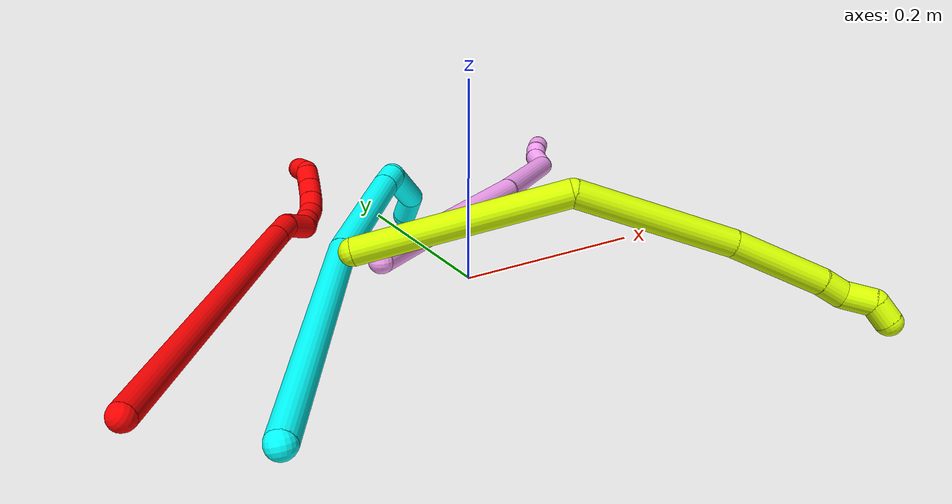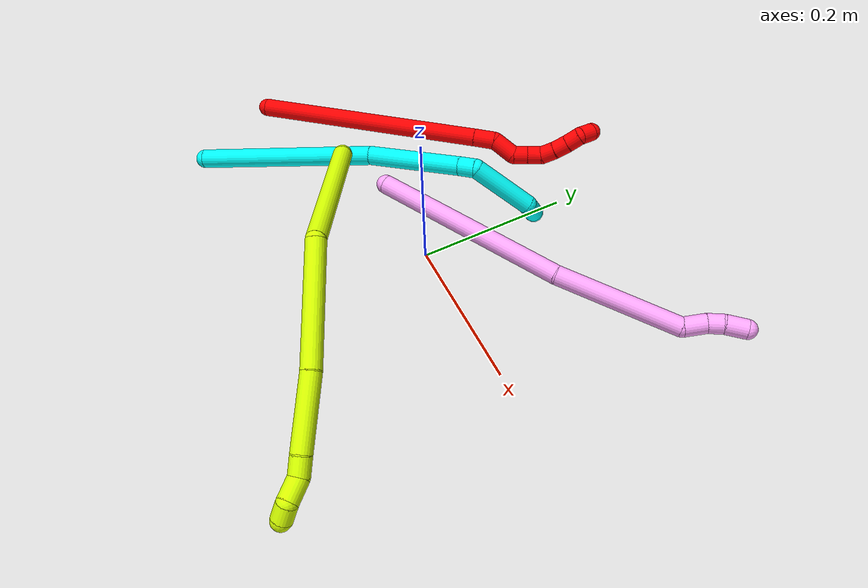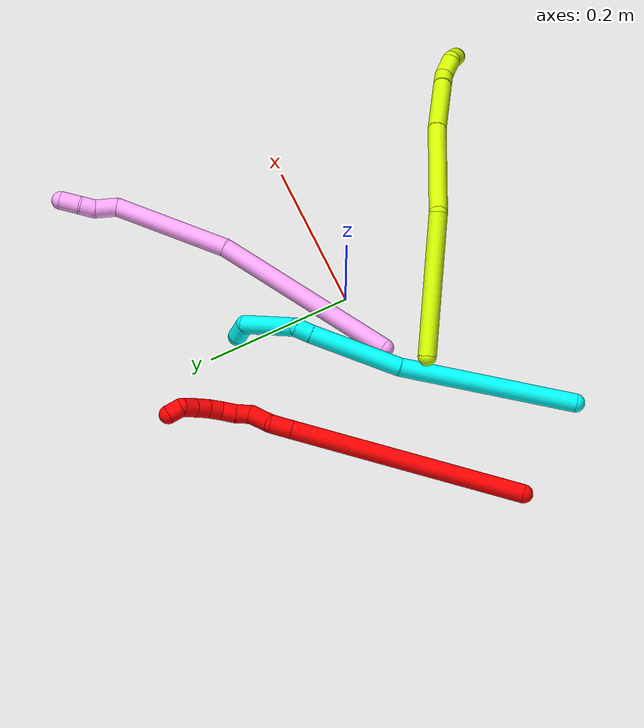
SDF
<sdf version="1.7">
 <world name="default">
  <model name="2">
   <static>0</static>
   <link name="2">
    <collision name="collision-cylinder-e_1_1_4">
     <pose>0.090206 0.098156 0.085529 -0.854029 0.605924 -0.282565</pose>
     <geometry><cylinder><radius>0.0125</radius><length>0.316776</length></cylinder></geometry>
     <surface>
      <friction><ode><mu>1.16</mu><mu2>1.16</mu2><slip1>0</slip1><slip2>0</slip2></ode></friction>
      <contact><ode><kp>1e+06</kp><kd>1</kd><max_vel>0</max_vel><min_depth>0.001</min_depth></ode></contact>
     </surface>
    </collision>
    <visual name="visual-cylinder-e_1_1_4">
     <pose>0.090206 0.098156 0.085529 -0.854029 0.605924 -0.282565</pose>
     <geometry><cylinder><radius>0.0125</radius><length>0.316776</length></cylinder></geometry>
     <material><ambient>1 0 0 1</ambient></material>
    </visual>
    <collision name="collision-cylinder-e_2_4_5">
     <pose>0.18873 0.205389 0.179225 -0.838207 0.598079 -0.272972</pose>
     <geometry><cylinder><radius>0.0125</radius><length>0.02955</length></cylinder></geometry>
     <surface>
      <friction><ode><mu>1.16</mu><mu2>1.16</mu2><slip1>0</slip1><slip2>0</slip2></ode></friction>
      <contact><ode><kp>1e+06</kp><kd>1</kd><max_vel>0</max_vel><min_depth>0.001</min_depth></ode></contact>
     </surface>
    </collision>
    <visual name="visual-cylinder-e_2_4_5">
     <pose>0.18873 0.205389 0.179225 -0.838207 0.598079 -0.272972</pose>
     <geometry><cylinder><radius>0.0125</radius><length>0.02955</length></cylinder></geometry>
     <material><ambient>1 0 0 1</ambient></material>
    </visual>
    <collision name="collision-cylinder-e_3_5_6">
     <pose>0.201803 0.220541 0.202084 -0.392033 0.290562 -0.058089</pose>
     <geometry><cylinder><radius>0.0125</radius><length>0.033189</length></cylinder></geometry>
     <surface>
      <friction><ode><mu>1.16</mu><mu2>1.16</mu2><slip1>0</slip1><slip2>0</slip2></ode></friction>
      <contact><ode><kp>1e+06</kp><kd>1</kd><max_vel>0</max_vel><min_depth>0.001</min_depth></ode></contact>
     </surface>
    </collision>
    <visual name="visual-cylinder-e_3_5_6">
     <pose>0.201803 0.220541 0.202084 -0.392033 0.290562 -0.058089</pose>
     <geometry><cylinder><radius>0.0125</radius><length>0.033189</length></cylinder></geometry>
     <material><ambient>1 0 0 1</ambient></material>
    </visual>
    <collision name="collision-cylinder-e_4_6_7">
     <pose>0.214077 0.231668 0.221219 -0.849619 0.840871 -0.399107</pose>
     <geometry><cylinder><radius>0.0125</radius><length>0.02018</length></cylinder></geometry>
     <surface>
      <friction><ode><mu>1.16</mu><mu2>1.16</mu2><slip1>0</slip1><slip2>0</slip2></ode></friction>
      <contact><ode><kp>1e+06</kp><kd>1</kd><max_vel>0</max_vel><min_depth>0.001</min_depth></ode></contact>
     </surface>
    </collision>
    <visual name="visual-cylinder-e_4_6_7">
     <pose>0.214077 0.231668 0.221219 -0.849619 0.840871 -0.399107</pose>
     <geometry><cylinder><radius>0.0125</radius><length>0.02018</length></cylinder></geometry>
     <material><ambient>1 0 0 1</ambient></material>
    </visual>
    <collision name="collision-cylinder-e_5_7_8">
     <pose>0.228055 0.243132 0.230016 -0.974111 0.694781 -0.378918</pose>
     <geometry><cylinder><radius>0.0125</radius><length>0.020176</length></cylinder></geometry>
     <surface>
      <friction><ode><mu>1.16</mu><mu2>1.16</mu2><slip1>0</slip1><slip2>0</slip2></ode></friction>
      <contact><ode><kp>1e+06</kp><kd>1</kd><max_vel>0</max_vel><min_depth>0.001</min_depth></ode></contact>
     </surface>
    </collision>
    <visual name="visual-cylinder-e_5_7_8">
     <pose>0.228055 0.243132 0.230016 -0.974111 0.694781 -0.378918</pose>
     <geometry><cylinder><radius>0.0125</radius><length>0.020176</length></cylinder></geometry>
     <material><ambient>1 0 0 1</ambient></material>
    </visual>
    <collision name="collision-cylinder-e_6_8_9">
     <pose>0.241179 0.25699 0.234898 -1.50004 0.728789 -0.682869</pose>
     <geometry><cylinder><radius>0.0125</radius><length>0.020016</length></cylinder></geometry>
     <surface>
      <friction><ode><mu>1.16</mu><mu2>1.16</mu2><slip1>0</slip1><slip2>0</slip2></ode></friction>
      <contact><ode><kp>1e+06</kp><kd>1</kd><max_vel>0</max_vel><min_depth>0.001</min_depth></ode></contact>
     </surface>
    </collision>
    <visual name="visual-cylinder-e_6_8_9">
     <pose>0.241179 0.25699 0.234898 -1.50004 0.728789 -0.682869</pose>
     <geometry><cylinder><radius>0.0125</radius><length>0.020016</length></cylinder></geometry>
     <material><ambient>1 0 0 1</ambient></material>
    </visual>
    <collision name="collision-cylinder-e_7_9_10">
     <pose>0.254876 0.271542 0.234806 -1.65783 0.778359 -0.841437</pose>
     <geometry><cylinder><radius>0.0125</radius><length>0.020032</length></cylinder></geometry>
     <surface>
      <friction><ode><mu>1.16</mu><mu2>1.16</mu2><slip1>0</slip1><slip2>0</slip2></ode></friction>
      <contact><ode><kp>1e+06</kp><kd>1</kd><max_vel>0</max_vel><min_depth>0.001</min_depth></ode></contact>
     </surface>
    </collision>
    <visual name="visual-cylinder-e_7_9_10">
     <pose>0.254876 0.271542 0.234806 -1.65783 0.778359 -0.841437</pose>
     <geometry><cylinder><radius>0.0125</radius><length>0.020032</length></cylinder></geometry>
     <material><ambient>1 0 0 1</ambient></material>
    </visual>
    <collision name="collision-cylinder-e_8_10_11">
     <pose>0.268942 0.285681 0.232909 -1.75043 0.777231 -0.912011</pose>
     <geometry><cylinder><radius>0.0125</radius><length>0.020057</length></cylinder></geometry>
     <surface>
      <friction><ode><mu>1.16</mu><mu2>1.16</mu2><slip1>0</slip1><slip2>0</slip2></ode></friction>
      <contact><ode><kp>1e+06</kp><kd>1</kd><max_vel>0</max_vel><min_depth>0.001</min_depth></ode></contact>
     </surface>
    </collision>
    <visual name="visual-cylinder-e_8_10_11">
     <pose>0.268942 0.285681 0.232909 -1.75043 0.777231 -0.912011</pose>
     <geometry><cylinder><radius>0.0125</radius><length>0.020057</length></cylinder></geometry>
     <material><ambient>1 0 0 1</ambient></material>
    </visual>
    <collision name="collision-cylinder-e_9_11_2">
     <pose>0.285802 0.293666 0.23329 -0.520262 1.37866 -0.431906</pose>
     <geometry><cylinder><radius>0.0125</radius><length>0.020023</length></cylinder></geometry>
     <surface>
      <friction><ode><mu>1.16</mu><mu2>1.16</mu2><slip1>0</slip1><slip2>0</slip2></ode></friction>
      <contact><ode><kp>1e+06</kp><kd>1</kd><max_vel>0</max_vel><min_depth>0.001</min_depth></ode></contact>
     </surface>
    </collision>
    <visual name="visual-cylinder-e_9_11_2">
     <pose>0.285802 0.293666 0.23329 -0.520262 1.37866 -0.431906</pose>
     <geometry><cylinder><radius>0.0125</radius><length>0.020023</length></cylinder></geometry>
     <material><ambient>1 0 0 1</ambient></material>
    </visual>
    <collision name="collision-sphere-2">
     <pose>0.295629 0.294616 0.234949 0 -0 0</pose>
     <geometry><sphere><radius>0.0125</radius></sphere></geometry>
     <surface>
      <friction><ode><mu>1.16</mu><mu2>1.16</mu2><slip1>0</slip1><slip2>0</slip2></ode></friction>
      <contact><ode><kp>1e+06</kp><kd>1</kd><max_vel>0</max_vel><min_depth>0.001</min_depth></ode></contact>
     </surface>
    </collision>
    <visual name="visual-sphere-2">
     <pose>0.295629 0.294616 0.234949 0 -0 0</pose>
     <geometry><sphere><radius>0.0125</radius></sphere></geometry>
     <material><ambient>1 0 0 1</ambient></material>
    </visual>
    <collision name="collision-sphere-11">
     <pose>0.275975 0.292715 0.231632 0 -0 0</pose>
     <geometry><sphere><radius>0.0125</radius></sphere></geometry>
     <surface>
      <friction><ode><mu>1.16</mu><mu2>1.16</mu2><slip1>0</slip1><slip2>0</slip2></ode></friction>
      <contact><ode><kp>1e+06</kp><kd>1</kd><max_vel>0</max_vel><min_depth>0.001</min_depth></ode></contact>
     </surface>
    </collision>
    <visual name="visual-sphere-11">
     <pose>0.275975 0.292715 0.231632 0 -0 0</pose>
     <geometry><sphere><radius>0.0125</radius></sphere></geometry>
     <material><ambient>1 0 0 1</ambient></material>
    </visual>
    <collision name="collision-sphere-10">
     <pose>0.261909 0.278647 0.234186 0 -0 0</pose>
     <geometry><sphere><radius>0.0125</radius></sphere></geometry>
     <surface>
      <friction><ode><mu>1.16</mu><mu2>1.16</mu2><slip1>0</slip1><slip2>0</slip2></ode></friction>
      <contact><ode><kp>1e+06</kp><kd>1</kd><max_vel>0</max_vel><min_depth>0.001</min_depth></ode></contact>
     </surface>
    </collision>
    <visual name="visual-sphere-10">
     <pose>0.261909 0.278647 0.234186 0 -0 0</pose>
     <geometry><sphere><radius>0.0125</radius></sphere></geometry>
     <material><ambient>1 0 0 1</ambient></material>
    </visual>
    <collision name="collision-sphere-9">
     <pose>0.247844 0.264437 0.235426 0 -0 0</pose>
     <geometry><sphere><radius>0.0125</radius></sphere></geometry>
     <surface>
      <friction><ode><mu>1.16</mu><mu2>1.16</mu2><slip1>0</slip1><slip2>0</slip2></ode></friction>
      <contact><ode><kp>1e+06</kp><kd>1</kd><max_vel>0</max_vel><min_depth>0.001</min_depth></ode></contact>
     </surface>
    </collision>
    <visual name="visual-sphere-9">
     <pose>0.247844 0.264437 0.235426 0 -0 0</pose>
     <geometry><sphere><radius>0.0125</radius></sphere></geometry>
     <material><ambient>1 0 0 1</ambient></material>
    </visual>
    <collision name="collision-sphere-4">
     <pose>0.180411 0.196311 0.171059 0 -0 0</pose>
     <geometry><sphere><radius>0.0125</radius></sphere></geometry>
     <surface>
      <friction><ode><mu>1.16</mu><mu2>1.16</mu2><slip1>0</slip1><slip2>0</slip2></ode></friction>
      <contact><ode><kp>1e+06</kp><kd>1</kd><max_vel>0</max_vel><min_depth>0.001</min_depth></ode></contact>
     </surface>
    </collision>
    <visual name="visual-sphere-4">
     <pose>0.180411 0.196311 0.171059 0 -0 0</pose>
     <geometry><sphere><radius>0.0125</radius></sphere></geometry>
     <material><ambient>1 0 0 1</ambient></material>
    </visual>
    <collision name="collision-sphere-1">
     <geometry><sphere><radius>0.0125</radius></sphere></geometry>
     <surface>
      <friction><ode><mu>1.16</mu><mu2>1.16</mu2><slip1>0</slip1><slip2>0</slip2></ode></friction>
      <contact><ode><kp>1e+06</kp><kd>1</kd><max_vel>0</max_vel><min_depth>0.001</min_depth></ode></contact>
     </surface>
    </collision>
    <visual name="visual-sphere-1">
     <geometry><sphere><radius>0.0125</radius></sphere></geometry>
     <material><ambient>1 0 0 1</ambient></material>
    </visual>
    <collision name="collision-sphere-8">
     <pose>0.234514 0.249543 0.23437 0 -0 0</pose>
     <geometry><sphere><radius>0.0125</radius></sphere></geometry>
     <surface>
      <friction><ode><mu>1.16</mu><mu2>1.16</mu2><slip1>0</slip1><slip2>0</slip2></ode></friction>
      <contact><ode><kp>1e+06</kp><kd>1</kd><max_vel>0</max_vel><min_depth>0.001</min_depth></ode></contact>
     </surface>
    </collision>
    <visual name="visual-sphere-8">
     <pose>0.234514 0.249543 0.23437 0 -0 0</pose>
     <geometry><sphere><radius>0.0125</radius></sphere></geometry>
     <material><ambient>1 0 0 1</ambient></material>
    </visual>
    <collision name="collision-sphere-5">
     <pose>0.197049 0.214466 0.187391 0 -0 0</pose>
     <geometry><sphere><radius>0.0125</radius></sphere></geometry>
     <surface>
      <friction><ode><mu>1.16</mu><mu2>1.16</mu2><slip1>0</slip1><slip2>0</slip2></ode></friction>
      <contact><ode><kp>1e+06</kp><kd>1</kd><max_vel>0</max_vel><min_depth>0.001</min_depth></ode></contact>
     </surface>
    </collision>
    <visual name="visual-sphere-5">
     <pose>0.197049 0.214466 0.187391 0 -0 0</pose>
     <geometry><sphere><radius>0.0125</radius></sphere></geometry>
     <material><ambient>1 0 0 1</ambient></material>
    </visual>
    <collision name="collision-sphere-6">
     <pose>0.206558 0.226615 0.216776 0 -0 0</pose>
     <geometry><sphere><radius>0.0125</radius></sphere></geometry>
     <surface>
      <friction><ode><mu>1.16</mu><mu2>1.16</mu2><slip1>0</slip1><slip2>0</slip2></ode></friction>
      <contact><ode><kp>1e+06</kp><kd>1</kd><max_vel>0</max_vel><min_depth>0.001</min_depth></ode></contact>
     </surface>
    </collision>
    <visual name="visual-sphere-6">
     <pose>0.206558 0.226615 0.216776 0 -0 0</pose>
     <geometry><sphere><radius>0.0125</radius></sphere></geometry>
     <material><ambient>1 0 0 1</ambient></material>
    </visual>
    <collision name="collision-sphere-7">
     <pose>0.221596 0.236722 0.225661 0 -0 0</pose>
     <geometry><sphere><radius>0.0125</radius></sphere></geometry>
     <surface>
      <friction><ode><mu>1.16</mu><mu2>1.16</mu2><slip1>0</slip1><slip2>0</slip2></ode></friction>
      <contact><ode><kp>1e+06</kp><kd>1</kd><max_vel>0</max_vel><min_depth>0.001</min_depth></ode></contact>
     </surface>
    </collision>
    <visual name="visual-sphere-7">
     <pose>0.221596 0.236722 0.225661 0 -0 0</pose>
     <geometry><sphere><radius>0.0125</radius></sphere></geometry>
     <material><ambient>1 0 0 1</ambient></material>
    </visual>
    <inertial>
     <pose>0.141642 0.152512 0.1339 0 -0 0</pose>
     <mass>0.5</mass>
     <inertia>
      <ixx>0.001521</ixx>
      <ixy>0</ixy>
      <ixz>0</ixz>
      <iyy>0.001419</iyy>
      <iyz>0</iyz>
      <izz>-0.003165</izz>
     </inertia>
    </inertial>
   </link>
   <pose>-0.350486 -0.090534 0.011495 2.34429 0.051048 1.81404</pose>
  </model>
  <model name="3">
   <static>0</static>
   <link name="3">
    <collision name="collision-cylinder-e_1_1_4">
     <pose>0.103184 -0.001697 0.059919 0.028318 1.04452 0.0163</pose>
     <geometry><cylinder><radius>0.0125</radius><length>0.238664</length></cylinder></geometry>
     <surface>
      <friction><ode><mu>1.16</mu><mu2>1.16</mu2><slip1>0</slip1><slip2>0</slip2></ode></friction>
      <contact><ode><kp>1e+06</kp><kd>1</kd><max_vel>0</max_vel><min_depth>0.001</min_depth></ode></contact>
     </surface>
    </collision>
    <visual name="visual-cylinder-e_1_1_4">
     <pose>0.103184 -0.001697 0.059919 0.028318 1.04452 0.0163</pose>
     <geometry><cylinder><radius>0.0125</radius><length>0.238664</length></cylinder></geometry>
     <material><ambient>0.003922 1 0.996078 1</ambient></material>
    </visual>
    <collision name="collision-cylinder-e_2_4_5">
     <pose>0.261325 -0.014248 0.147703 0.371429 1.07246 0.222398</pose>
     <geometry><cylinder><radius>0.0125</radius><length>0.125132</length></cylinder></geometry>
     <surface>
      <friction><ode><mu>1.16</mu><mu2>1.16</mu2><slip1>0</slip1><slip2>0</slip2></ode></friction>
      <contact><ode><kp>1e+06</kp><kd>1</kd><max_vel>0</max_vel><min_depth>0.001</min_depth></ode></contact>
     </surface>
    </collision>
    <visual name="visual-cylinder-e_2_4_5">
     <pose>0.261325 -0.014248 0.147703 0.371429 1.07246 0.222398</pose>
     <geometry><cylinder><radius>0.0125</radius><length>0.125132</length></cylinder></geometry>
     <material><ambient>0.003922 1 0.996078 1</ambient></material>
    </visual>
    <collision name="collision-cylinder-e_3_5_6">
     <pose>0.32589 -0.027634 0.18047 0.476736 1.04954 0.279505</pose>
     <geometry><cylinder><radius>0.0125</radius><length>0.022161</length></cylinder></geometry>
     <surface>
      <friction><ode><mu>1.16</mu><mu2>1.16</mu2><slip1>0</slip1><slip2>0</slip2></ode></friction>
      <contact><ode><kp>1e+06</kp><kd>1</kd><max_vel>0</max_vel><min_depth>0.001</min_depth></ode></contact>
     </surface>
    </collision>
    <visual name="visual-cylinder-e_3_5_6">
     <pose>0.32589 -0.027634 0.18047 0.476736 1.04954 0.279505</pose>
     <geometry><cylinder><radius>0.0125</radius><length>0.022161</length></cylinder></geometry>
     <material><ambient>0.003922 1 0.996078 1</ambient></material>
    </visual>
    <collision name="collision-cylinder-e_4_6_7">
     <pose>0.376768 -0.028074 0.175283 -2.93715 1.3261 -2.88041</pose>
     <geometry><cylinder><radius>0.0125</radius><length>0.085072</length></cylinder></geometry>
     <surface>
      <friction><ode><mu>1.16</mu><mu2>1.16</mu2><slip1>0</slip1><slip2>0</slip2></ode></friction>
      <contact><ode><kp>1e+06</kp><kd>1</kd><max_vel>0</max_vel><min_depth>0.001</min_depth></ode></contact>
     </surface>
    </collision>
    <visual name="visual-cylinder-e_4_6_7">
     <pose>0.376768 -0.028074 0.175283 -2.93715 1.3261 -2.88041</pose>
     <geometry><cylinder><radius>0.0125</radius><length>0.085072</length></cylinder></geometry>
     <material><ambient>0.003922 1 0.996078 1</ambient></material>
    </visual>
    <collision name="collision-cylinder-e_5_7_2">
     <pose>0.426417 -0.018054 0.156431 -2.40612 0.616877 -1.38197</pose>
     <geometry><cylinder><radius>0.0125</radius><length>0.028971</length></cylinder></geometry>
     <surface>
      <friction><ode><mu>1.16</mu><mu2>1.16</mu2><slip1>0</slip1><slip2>0</slip2></ode></friction>
      <contact><ode><kp>1e+06</kp><kd>1</kd><max_vel>0</max_vel><min_depth>0.001</min_depth></ode></contact>
     </surface>
    </collision>
    <visual name="visual-cylinder-e_5_7_2">
     <pose>0.426417 -0.018054 0.156431 -2.40612 0.616877 -1.38197</pose>
     <geometry><cylinder><radius>0.0125</radius><length>0.028971</length></cylinder></geometry>
     <material><ambient>0.003922 1 0.996078 1</ambient></material>
    </visual>
    <collision name="collision-sphere-2">
     <pose>0.434797 -0.010127 0.147669 0 -0 0</pose>
     <geometry><sphere><radius>0.0125</radius></sphere></geometry>
     <surface>
      <friction><ode><mu>1.16</mu><mu2>1.16</mu2><slip1>0</slip1><slip2>0</slip2></ode></friction>
      <contact><ode><kp>1e+06</kp><kd>1</kd><max_vel>0</max_vel><min_depth>0.001</min_depth></ode></contact>
     </surface>
    </collision>
    <visual name="visual-sphere-2">
     <pose>0.434797 -0.010127 0.147669 0 -0 0</pose>
     <geometry><sphere><radius>0.0125</radius></sphere></geometry>
     <material><ambient>0.003922 1 0.996078 1</ambient></material>
    </visual>
    <collision name="collision-sphere-7">
     <pose>0.418037 -0.025982 0.165193 0 -0 0</pose>
     <geometry><sphere><radius>0.0125</radius></sphere></geometry>
     <surface>
      <friction><ode><mu>1.16</mu><mu2>1.16</mu2><slip1>0</slip1><slip2>0</slip2></ode></friction>
      <contact><ode><kp>1e+06</kp><kd>1</kd><max_vel>0</max_vel><min_depth>0.001</min_depth></ode></contact>
     </surface>
    </collision>
    <visual name="visual-sphere-7">
     <pose>0.418037 -0.025982 0.165193 0 -0 0</pose>
     <geometry><sphere><radius>0.0125</radius></sphere></geometry>
     <material><ambient>0.003922 1 0.996078 1</ambient></material>
    </visual>
    <collision name="collision-sphere-6">
     <pose>0.335499 -0.030166 0.185373 0 -0 0</pose>
     <geometry><sphere><radius>0.0125</radius></sphere></geometry>
     <surface>
      <friction><ode><mu>1.16</mu><mu2>1.16</mu2><slip1>0</slip1><slip2>0</slip2></ode></friction>
      <contact><ode><kp>1e+06</kp><kd>1</kd><max_vel>0</max_vel><min_depth>0.001</min_depth></ode></contact>
     </surface>
    </collision>
    <visual name="visual-sphere-6">
     <pose>0.335499 -0.030166 0.185373 0 -0 0</pose>
     <geometry><sphere><radius>0.0125</radius></sphere></geometry>
     <material><ambient>0.003922 1 0.996078 1</ambient></material>
    </visual>
    <collision name="collision-sphere-5">
     <pose>0.316281 -0.025102 0.175568 0 -0 0</pose>
     <geometry><sphere><radius>0.0125</radius></sphere></geometry>
     <surface>
      <friction><ode><mu>1.16</mu><mu2>1.16</mu2><slip1>0</slip1><slip2>0</slip2></ode></friction>
      <contact><ode><kp>1e+06</kp><kd>1</kd><max_vel>0</max_vel><min_depth>0.001</min_depth></ode></contact>
     </surface>
    </collision>
    <visual name="visual-sphere-5">
     <pose>0.316281 -0.025102 0.175568 0 -0 0</pose>
     <geometry><sphere><radius>0.0125</radius></sphere></geometry>
     <material><ambient>0.003922 1 0.996078 1</ambient></material>
    </visual>
    <collision name="collision-sphere-1">
     <geometry><sphere><radius>0.0125</radius></sphere></geometry>
     <surface>
      <friction><ode><mu>1.16</mu><mu2>1.16</mu2><slip1>0</slip1><slip2>0</slip2></ode></friction>
      <contact><ode><kp>1e+06</kp><kd>1</kd><max_vel>0</max_vel><min_depth>0.001</min_depth></ode></contact>
     </surface>
    </collision>
    <visual name="visual-sphere-1">
     <geometry><sphere><radius>0.0125</radius></sphere></geometry>
     <material><ambient>0.003922 1 0.996078 1</ambient></material>
    </visual>
    <collision name="collision-sphere-4">
     <pose>0.206368 -0.003395 0.119838 0 -0 0</pose>
     <geometry><sphere><radius>0.0125</radius></sphere></geometry>
     <surface>
      <friction><ode><mu>1.16</mu><mu2>1.16</mu2><slip1>0</slip1><slip2>0</slip2></ode></friction>
      <contact><ode><kp>1e+06</kp><kd>1</kd><max_vel>0</max_vel><min_depth>0.001</min_depth></ode></contact>
     </surface>
    </collision>
    <visual name="visual-sphere-4">
     <pose>0.206368 -0.003395 0.119838 0 -0 0</pose>
     <geometry><sphere><radius>0.0125</radius></sphere></geometry>
     <material><ambient>0.003922 1 0.996078 1</ambient></material>
    </visual>
    <inertial>
     <pose>0.217909 -0.011423 0.112452 0 -0 0</pose>
     <mass>0.5</mass>
     <inertia>
      <ixx>0.000696</ixx>
      <ixy>0</ixy>
      <ixz>0</ixz>
      <iyy>0.001384</iyy>
      <iyz>0</iyz>
      <izz>-0.001139</izz>
     </inertia>
    </inertial>
   </link>
   <pose>-0.272157 -0.205715 0.028484 -0.279761 0.354425 0.839336</pose>
  </model>
  <model name="4">
   <static>0</static>
   <link name="4">
    <collision name="collision-cylinder-e_1_1_4">
     <pose>0.052801 -0.071991 0.09312 0.658119 0.421685 0.145908</pose>
     <geometry><cylinder><radius>0.0125</radius><length>0.258008</length></cylinder></geometry>
     <surface>
      <friction><ode><mu>1.16</mu><mu2>1.16</mu2><slip1>0</slip1><slip2>0</slip2></ode></friction>
      <contact><ode><kp>1e+06</kp><kd>1</kd><max_vel>0</max_vel><min_depth>0.001</min_depth></ode></contact>
     </surface>
    </collision>
    <visual name="visual-cylinder-e_1_1_4">
     <pose>0.052801 -0.071991 0.09312 0.658119 0.421685 0.145908</pose>
     <geometry><cylinder><radius>0.0125</radius><length>0.258008</length></cylinder></geometry>
     <material><ambient>1 0.65098 0.996078 1</ambient></material>
    </visual>
    <collision name="collision-cylinder-e_2_4_5">
     <pose>0.140756 -0.200399 0.233637 0.872074 0.445151 0.210135</pose>
     <geometry><cylinder><radius>0.0125</radius><length>0.163282</length></cylinder></geometry>
     <surface>
      <friction><ode><mu>1.16</mu><mu2>1.16</mu2><slip1>0</slip1><slip2>0</slip2></ode></friction>
      <contact><ode><kp>1e+06</kp><kd>1</kd><max_vel>0</max_vel><min_depth>0.001</min_depth></ode></contact>
     </surface>
    </collision>
    <visual name="visual-cylinder-e_2_4_5">
     <pose>0.140756 -0.200399 0.233637 0.872074 0.445151 0.210135</pose>
     <geometry><cylinder><radius>0.0125</radius><length>0.163282</length></cylinder></geometry>
     <material><ambient>1 0.65098 0.996078 1</ambient></material>
    </visual>
    <collision name="collision-cylinder-e_3_5_6">
     <pose>0.187056 -0.267307 0.282576 1.42487 0.810363 0.709608</pose>
     <geometry><cylinder><radius>0.0125</radius><length>0.030766</length></cylinder></geometry>
     <surface>
      <friction><ode><mu>1.16</mu><mu2>1.16</mu2><slip1>0</slip1><slip2>0</slip2></ode></friction>
      <contact><ode><kp>1e+06</kp><kd>1</kd><max_vel>0</max_vel><min_depth>0.001</min_depth></ode></contact>
     </surface>
    </collision>
    <visual name="visual-cylinder-e_3_5_6">
     <pose>0.187056 -0.267307 0.282576 1.42487 0.810363 0.709608</pose>
     <geometry><cylinder><radius>0.0125</radius><length>0.030766</length></cylinder></geometry>
     <material><ambient>1 0.65098 0.996078 1</ambient></material>
    </visual>
    <collision name="collision-cylinder-e_4_6_7">
     <pose>0.205714 -0.283456 0.288269 0.937994 0.819369 0.433176</pose>
     <geometry><cylinder><radius>0.0125</radius><length>0.020561</length></cylinder></geometry>
     <surface>
      <friction><ode><mu>1.16</mu><mu2>1.16</mu2><slip1>0</slip1><slip2>0</slip2></ode></friction>
      <contact><ode><kp>1e+06</kp><kd>1</kd><max_vel>0</max_vel><min_depth>0.001</min_depth></ode></contact>
     </surface>
    </collision>
    <visual name="visual-cylinder-e_4_6_7">
     <pose>0.205714 -0.283456 0.288269 0.937994 0.819369 0.433176</pose>
     <geometry><cylinder><radius>0.0125</radius><length>0.020561</length></cylinder></geometry>
     <material><ambient>1 0.65098 0.996078 1</ambient></material>
    </visual>
    <collision name="collision-cylinder-e_5_7_2">
     <pose>0.220941 -0.298529 0.29869 0.983141 0.598585 0.327454</pose>
     <geometry><cylinder><radius>0.0125</radius><length>0.027383</length></cylinder></geometry>
     <surface>
      <friction><ode><mu>1.16</mu><mu2>1.16</mu2><slip1>0</slip1><slip2>0</slip2></ode></friction>
      <contact><ode><kp>1e+06</kp><kd>1</kd><max_vel>0</max_vel><min_depth>0.001</min_depth></ode></contact>
     </surface>
    </collision>
    <visual name="visual-cylinder-e_5_7_2">
     <pose>0.220941 -0.298529 0.29869 0.983141 0.598585 0.327454</pose>
     <geometry><cylinder><radius>0.0125</radius><length>0.027383</length></cylinder></geometry>
     <material><ambient>1 0.65098 0.996078 1</ambient></material>
    </visual>
    <collision name="collision-sphere-2">
     <pose>0.228656 -0.307943 0.304961 0 -0 0</pose>
     <geometry><sphere><radius>0.0125</radius></sphere></geometry>
     <surface>
      <friction><ode><mu>1.16</mu><mu2>1.16</mu2><slip1>0</slip1><slip2>0</slip2></ode></friction>
      <contact><ode><kp>1e+06</kp><kd>1</kd><max_vel>0</max_vel><min_depth>0.001</min_depth></ode></contact>
     </surface>
    </collision>
    <visual name="visual-sphere-2">
     <pose>0.228656 -0.307943 0.304961 0 -0 0</pose>
     <geometry><sphere><radius>0.0125</radius></sphere></geometry>
     <material><ambient>1 0.65098 0.996078 1</ambient></material>
    </visual>
    <collision name="collision-sphere-7">
     <pose>0.213226 -0.289116 0.292419 0 -0 0</pose>
     <geometry><sphere><radius>0.0125</radius></sphere></geometry>
     <surface>
      <friction><ode><mu>1.16</mu><mu2>1.16</mu2><slip1>0</slip1><slip2>0</slip2></ode></friction>
      <contact><ode><kp>1e+06</kp><kd>1</kd><max_vel>0</max_vel><min_depth>0.001</min_depth></ode></contact>
     </surface>
    </collision>
    <visual name="visual-sphere-7">
     <pose>0.213226 -0.289116 0.292419 0 -0 0</pose>
     <geometry><sphere><radius>0.0125</radius></sphere></geometry>
     <material><ambient>1 0.65098 0.996078 1</ambient></material>
    </visual>
    <collision name="collision-sphere-6">
     <pose>0.198202 -0.277797 0.284118 0 -0 0</pose>
     <geometry><sphere><radius>0.0125</radius></sphere></geometry>
     <surface>
      <friction><ode><mu>1.16</mu><mu2>1.16</mu2><slip1>0</slip1><slip2>0</slip2></ode></friction>
      <contact><ode><kp>1e+06</kp><kd>1</kd><max_vel>0</max_vel><min_depth>0.001</min_depth></ode></contact>
     </surface>
    </collision>
    <visual name="visual-sphere-6">
     <pose>0.198202 -0.277797 0.284118 0 -0 0</pose>
     <geometry><sphere><radius>0.0125</radius></sphere></geometry>
     <material><ambient>1 0.65098 0.996078 1</ambient></material>
    </visual>
    <collision name="collision-sphere-5">
     <pose>0.175911 -0.256817 0.281034 0 -0 0</pose>
     <geometry><sphere><radius>0.0125</radius></sphere></geometry>
     <surface>
      <friction><ode><mu>1.16</mu><mu2>1.16</mu2><slip1>0</slip1><slip2>0</slip2></ode></friction>
      <contact><ode><kp>1e+06</kp><kd>1</kd><max_vel>0</max_vel><min_depth>0.001</min_depth></ode></contact>
     </surface>
    </collision>
    <visual name="visual-sphere-5">
     <pose>0.175911 -0.256817 0.281034 0 -0 0</pose>
     <geometry><sphere><radius>0.0125</radius></sphere></geometry>
     <material><ambient>1 0.65098 0.996078 1</ambient></material>
    </visual>
    <collision name="collision-sphere-1">
     <geometry><sphere><radius>0.0125</radius></sphere></geometry>
     <surface>
      <friction><ode><mu>1.16</mu><mu2>1.16</mu2><slip1>0</slip1><slip2>0</slip2></ode></friction>
      <contact><ode><kp>1e+06</kp><kd>1</kd><max_vel>0</max_vel><min_depth>0.001</min_depth></ode></contact>
     </surface>
    </collision>
    <visual name="visual-sphere-1">
     <geometry><sphere><radius>0.0125</radius></sphere></geometry>
     <material><ambient>1 0.65098 0.996078 1</ambient></material>
    </visual>
    <collision name="collision-sphere-4">
     <pose>0.105602 -0.143982 0.18624 0 -0 0</pose>
     <geometry><sphere><radius>0.0125</radius></sphere></geometry>
     <surface>
      <friction><ode><mu>1.16</mu><mu2>1.16</mu2><slip1>0</slip1><slip2>0</slip2></ode></friction>
      <contact><ode><kp>1e+06</kp><kd>1</kd><max_vel>0</max_vel><min_depth>0.001</min_depth></ode></contact>
     </surface>
    </collision>
    <visual name="visual-sphere-4">
     <pose>0.105602 -0.143982 0.18624 0 -0 0</pose>
     <geometry><sphere><radius>0.0125</radius></sphere></geometry>
     <material><ambient>1 0.65098 0.996078 1</ambient></material>
    </visual>
    <inertial>
     <pose>0.105282 -0.147045 0.169949 0 -0 0</pose>
     <mass>0.5</mass>
     <inertia>
      <ixx>0.001913</ixx>
      <ixy>0</ixy>
      <ixz>0</ixz>
      <iyy>0.001683</iyy>
      <iyz>0</iyz>
      <izz>0.000334</izz>
     </inertia>
    </inertial>
   </link>
   <pose>-0.099042 -0.008751 0.045561 1.48348 -0.806615 1.39527</pose>
  </model>
  <model name="15">
   <static>0</static>
   <link name="15">
    <collision name="collision-cylinder-e_1_1_4">
     <pose>0.002737 0.057399 0.076184 -0.645691 0.028689 -0.009598</pose>
     <geometry><cylinder><radius>0.0125</radius><length>0.190852</length></cylinder></geometry>
     <surface>
      <friction><ode><mu>1.16</mu><mu2>1.16</mu2><slip1>0</slip1><slip2>0</slip2></ode></friction>
      <contact><ode><kp>1e+06</kp><kd>1</kd><max_vel>0</max_vel><min_depth>0.001</min_depth></ode></contact>
     </surface>
    </collision>
    <visual name="visual-cylinder-e_1_1_4">
     <pose>0.002737 0.057399 0.076184 -0.645691 0.028689 -0.009598</pose>
     <geometry><cylinder><radius>0.0125</radius><length>0.190852</length></cylinder></geometry>
     <material><ambient>0.835294 1 0 1</ambient></material>
    </visual>
    <collision name="collision-cylinder-e_2_4_5">
     <pose>0.044857 0.168299 0.186963 -0.996794 0.553649 -0.306819</pose>
     <geometry><cylinder><radius>0.0125</radius><length>0.149803</length></cylinder></geometry>
     <surface>
      <friction><ode><mu>1.16</mu><mu2>1.16</mu2><slip1>0</slip1><slip2>0</slip2></ode></friction>
      <contact><ode><kp>1e+06</kp><kd>1</kd><max_vel>0</max_vel><min_depth>0.001</min_depth></ode></contact>
     </surface>
    </collision>
    <visual name="visual-cylinder-e_2_4_5">
     <pose>0.044857 0.168299 0.186963 -0.996794 0.553649 -0.306819</pose>
     <geometry><cylinder><radius>0.0125</radius><length>0.149803</length></cylinder></geometry>
     <material><ambient>0.835294 1 0 1</ambient></material>
    </visual>
    <collision name="collision-cylinder-e_3_5_6">
     <pose>0.111282 0.249615 0.241961 -0.937941 0.664856 -0.346343</pose>
     <geometry><cylinder><radius>0.0125</radius><length>0.087664</length></cylinder></geometry>
     <surface>
      <friction><ode><mu>1.16</mu><mu2>1.16</mu2><slip1>0</slip1><slip2>0</slip2></ode></friction>
      <contact><ode><kp>1e+06</kp><kd>1</kd><max_vel>0</max_vel><min_depth>0.001</min_depth></ode></contact>
     </surface>
    </collision>
    <visual name="visual-cylinder-e_3_5_6">
     <pose>0.111282 0.249615 0.241961 -0.937941 0.664856 -0.346343</pose>
     <geometry><cylinder><radius>0.0125</radius><length>0.087664</length></cylinder></geometry>
     <material><ambient>0.835294 1 0 1</ambient></material>
    </visual>
    <collision name="collision-cylinder-e_4_6_7">
     <pose>0.146617 0.284456 0.266659 -1.02201 0.788964 -0.458613</pose>
     <geometry><cylinder><radius>0.0125</radius><length>0.023373</length></cylinder></geometry>
     <surface>
      <friction><ode><mu>1.16</mu><mu2>1.16</mu2><slip1>0</slip1><slip2>0</slip2></ode></friction>
      <contact><ode><kp>1e+06</kp><kd>1</kd><max_vel>0</max_vel><min_depth>0.001</min_depth></ode></contact>
     </surface>
    </collision>
    <visual name="visual-cylinder-e_4_6_7">
     <pose>0.146617 0.284456 0.266659 -1.02201 0.788964 -0.458613</pose>
     <geometry><cylinder><radius>0.0125</radius><length>0.023373</length></cylinder></geometry>
     <material><ambient>0.835294 1 0 1</ambient></material>
    </visual>
    <collision name="collision-cylinder-e_5_7_8">
     <pose>0.161936 0.297269 0.281303 -0.50994 0.534932 -0.142607</pose>
     <geometry><cylinder><radius>0.0125</radius><length>0.027566</length></cylinder></geometry>
     <surface>
      <friction><ode><mu>1.16</mu><mu2>1.16</mu2><slip1>0</slip1><slip2>0</slip2></ode></friction>
      <contact><ode><kp>1e+06</kp><kd>1</kd><max_vel>0</max_vel><min_depth>0.001</min_depth></ode></contact>
     </surface>
    </collision>
    <visual name="visual-cylinder-e_5_7_8">
     <pose>0.161936 0.297269 0.281303 -0.50994 0.534932 -0.142607</pose>
     <geometry><cylinder><radius>0.0125</radius><length>0.027566</length></cylinder></geometry>
     <material><ambient>0.835294 1 0 1</ambient></material>
    </visual>
    <collision name="collision-cylinder-e_6_8_2">
     <pose>0.178703 0.305781 0.293948 -0.870625 1.22015 -0.628636</pose>
     <geometry><cylinder><radius>0.0125</radius><length>0.020743</length></cylinder></geometry>
     <surface>
      <friction><ode><mu>1.16</mu><mu2>1.16</mu2><slip1>0</slip1><slip2>0</slip2></ode></friction>
      <contact><ode><kp>1e+06</kp><kd>1</kd><max_vel>0</max_vel><min_depth>0.001</min_depth></ode></contact>
     </surface>
    </collision>
    <visual name="visual-cylinder-e_6_8_2">
     <pose>0.178703 0.305781 0.293948 -0.870625 1.22015 -0.628636</pose>
     <geometry><cylinder><radius>0.0125</radius><length>0.020743</length></cylinder></geometry>
     <material><ambient>0.835294 1 0 1</ambient></material>
    </visual>
    <collision name="collision-sphere-2">
     <pose>0.188443 0.308506 0.296243 0 -0 0</pose>
     <geometry><sphere><radius>0.0125</radius></sphere></geometry>
     <surface>
      <friction><ode><mu>1.16</mu><mu2>1.16</mu2><slip1>0</slip1><slip2>0</slip2></ode></friction>
      <contact><ode><kp>1e+06</kp><kd>1</kd><max_vel>0</max_vel><min_depth>0.001</min_depth></ode></contact>
     </surface>
    </collision>
    <visual name="visual-sphere-2">
     <pose>0.188443 0.308506 0.296243 0 -0 0</pose>
     <geometry><sphere><radius>0.0125</radius></sphere></geometry>
     <material><ambient>0.835294 1 0 1</ambient></material>
    </visual>
    <collision name="collision-sphere-4">
     <pose>0.005475 0.114798 0.152368 0 -0 0</pose>
     <geometry><sphere><radius>0.0125</radius></sphere></geometry>
     <surface>
      <friction><ode><mu>1.16</mu><mu2>1.16</mu2><slip1>0</slip1><slip2>0</slip2></ode></friction>
      <contact><ode><kp>1e+06</kp><kd>1</kd><max_vel>0</max_vel><min_depth>0.001</min_depth></ode></contact>
     </surface>
    </collision>
    <visual name="visual-sphere-4">
     <pose>0.005475 0.114798 0.152368 0 -0 0</pose>
     <geometry><sphere><radius>0.0125</radius></sphere></geometry>
     <material><ambient>0.835294 1 0 1</ambient></material>
    </visual>
    <collision name="collision-sphere-1">
     <geometry><sphere><radius>0.0125</radius></sphere></geometry>
     <surface>
      <friction><ode><mu>1.16</mu><mu2>1.16</mu2><slip1>0</slip1><slip2>0</slip2></ode></friction>
      <contact><ode><kp>1e+06</kp><kd>1</kd><max_vel>0</max_vel><min_depth>0.001</min_depth></ode></contact>
     </surface>
    </collision>
    <visual name="visual-sphere-1">
     <geometry><sphere><radius>0.0125</radius></sphere></geometry>
     <material><ambient>0.835294 1 0 1</ambient></material>
    </visual>
    <collision name="collision-sphere-8">
     <pose>0.168962 0.303057 0.291652 0 -0 0</pose>
     <geometry><sphere><radius>0.0125</radius></sphere></geometry>
     <surface>
      <friction><ode><mu>1.16</mu><mu2>1.16</mu2><slip1>0</slip1><slip2>0</slip2></ode></friction>
      <contact><ode><kp>1e+06</kp><kd>1</kd><max_vel>0</max_vel><min_depth>0.001</min_depth></ode></contact>
     </surface>
    </collision>
    <visual name="visual-sphere-8">
     <pose>0.168962 0.303057 0.291652 0 -0 0</pose>
     <geometry><sphere><radius>0.0125</radius></sphere></geometry>
     <material><ambient>0.835294 1 0 1</ambient></material>
    </visual>
    <collision name="collision-sphere-5">
     <pose>0.08424 0.2218 0.221558 0 -0 0</pose>
     <geometry><sphere><radius>0.0125</radius></sphere></geometry>
     <surface>
      <friction><ode><mu>1.16</mu><mu2>1.16</mu2><slip1>0</slip1><slip2>0</slip2></ode></friction>
      <contact><ode><kp>1e+06</kp><kd>1</kd><max_vel>0</max_vel><min_depth>0.001</min_depth></ode></contact>
     </surface>
    </collision>
    <visual name="visual-sphere-5">
     <pose>0.08424 0.2218 0.221558 0 -0 0</pose>
     <geometry><sphere><radius>0.0125</radius></sphere></geometry>
     <material><ambient>0.835294 1 0 1</ambient></material>
    </visual>
    <collision name="collision-sphere-6">
     <pose>0.138324 0.277431 0.262364 0 -0 0</pose>
     <geometry><sphere><radius>0.0125</radius></sphere></geometry>
     <surface>
      <friction><ode><mu>1.16</mu><mu2>1.16</mu2><slip1>0</slip1><slip2>0</slip2></ode></friction>
      <contact><ode><kp>1e+06</kp><kd>1</kd><max_vel>0</max_vel><min_depth>0.001</min_depth></ode></contact>
     </surface>
    </collision>
    <visual name="visual-sphere-6">
     <pose>0.138324 0.277431 0.262364 0 -0 0</pose>
     <geometry><sphere><radius>0.0125</radius></sphere></geometry>
     <material><ambient>0.835294 1 0 1</ambient></material>
    </visual>
    <collision name="collision-sphere-7">
     <pose>0.15491 0.291481 0.270954 0 -0 0</pose>
     <geometry><sphere><radius>0.0125</radius></sphere></geometry>
     <surface>
      <friction><ode><mu>1.16</mu><mu2>1.16</mu2><slip1>0</slip1><slip2>0</slip2></ode></friction>
      <contact><ode><kp>1e+06</kp><kd>1</kd><max_vel>0</max_vel><min_depth>0.001</min_depth></ode></contact>
     </surface>
    </collision>
    <visual name="visual-sphere-7">
     <pose>0.15491 0.291481 0.270954 0 -0 0</pose>
     <geometry><sphere><radius>0.0125</radius></sphere></geometry>
     <material><ambient>0.835294 1 0 1</ambient></material>
    </visual>
    <inertial>
     <pose>0.05719 0.158469 0.167686 0 -0 0</pose>
     <mass>0.5</mass>
     <inertia>
      <ixx>0.000785</ixx>
      <ixy>0</ixy>
      <ixz>0</ixz>
      <iyy>0.000631</iyy>
      <iyz>0</iyz>
      <izz>-0.000783</izz>
     </inertia>
    </inertial>
   </link>
   <pose>-0.144543 -0.0482 0.079001 -0.272475 1.06427 -1.49828</pose>
  </model>
 </world>
</sdf>
